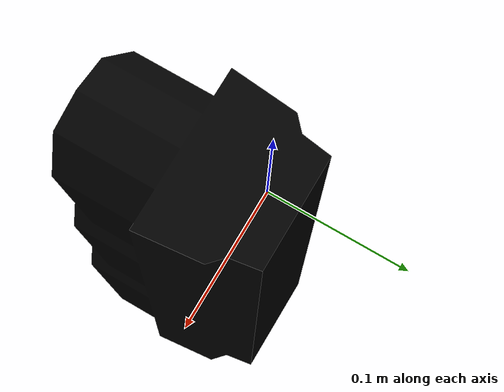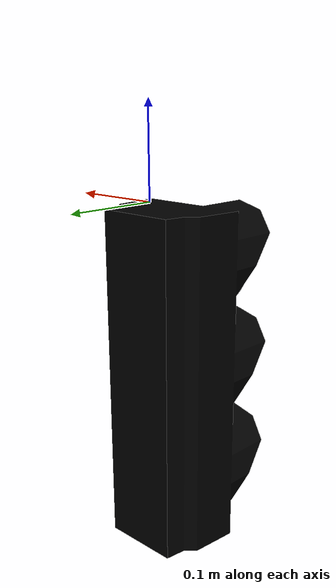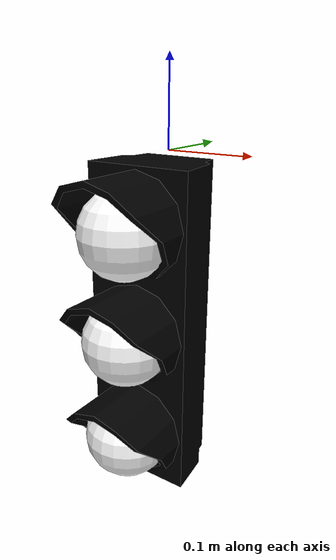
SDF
<?xml version='1.0'?>
<sdf version='1.6'>
  <model name='stop_light_small'>
    <link name='link'>
      <self_collide>0</self_collide>
      <enable_wind>0</enable_wind>
      <kinematic>0</kinematic>
      <pose frame=''>0 0 0 0 -0 0</pose>
      <gravity>1</gravity>
      <inertial>
        <mass>1</mass>
        <pose frame=''>0 0 0 0 -0 0</pose>
        <inertia>
          <ixx>1</ixx>
          <ixy>0</ixy>
          <ixz>0</ixz>
          <iyy>1</iyy>
          <iyz>0</iyz>
          <izz>1</izz>
        </inertia>
      </inertial>
      <visual name='red'>
        <pose frame=''>-0.001123 -0.082251 -0.077514 0 -0 0</pose>
        <geometry>
          <sphere>
            <radius>0.0506</radius>
          </sphere>
        </geometry>
        <material>
          <script>
            <uri>model://stop_light/materials/scripts/</uri>
            <uri>model://stop_light/materials/textures/</uri>
            <name>StopLight/Light</name>
          </script>
          <ambient>1 0 0 1</ambient>
          <specular>1 0 0 1</specular>
          <shader type='vertex'>
            <normal_map>__default__</normal_map>
          </shader>
          <diffuse>1 1 1 1</diffuse>
          <emissive>0 0 0 1</emissive>
        </material>
        <transparency>0</transparency>
        <cast_shadows>1</cast_shadows>
      </visual>
      <visual name='yellow'>
        <pose frame=''>-0.001123 -0.082251 -0.202 0 -0 0</pose>
        <geometry>
          <sphere>
            <radius>0.0506</radius>
          </sphere>
        </geometry>
        <material>
          <script>
            <uri>model://stop_light/materials/scripts/</uri>
            <uri>model://stop_light/materials/textures/</uri>
            <name>StopLight/Light</name>
          </script>
          <ambient>1 1 0 1</ambient>
          <specular>1 1 0 1</specular>
          <shader type='vertex'>
            <normal_map>__default__</normal_map>
          </shader>
          <diffuse>1 1 1 1</diffuse>
          <emissive>0 0 0 1</emissive>
        </material>
        <transparency>0</transparency>
        <cast_shadows>1</cast_shadows>
      </visual>
      <visual name='green'>
        <pose frame=''>-0.001123 -0.082251 -0.325 0 -0 0</pose>
        <geometry>
          <sphere>
            <radius>0.0506</radius>
          </sphere>
        </geometry>
        <material>
          <script>
            <uri>model://stop_light/materials/scripts/</uri>
            <uri>model://stop_light/materials/textures/</uri>
            <name>StopLight/Light</name>
          </script>
          <ambient>0 1 0 1</ambient>
          <specular>0 1 0 1</specular>
          <shader type='vertex'>
            <normal_map>__default__</normal_map>
          </shader>
          <diffuse>1 1 1 1</diffuse>
          <emissive>0 0 0 1</emissive>
        </material>
        <transparency>0</transparency>
        <cast_shadows>1</cast_shadows>
      </visual>
      <visual name='frame'>
        <geometry>
          <mesh>
            <uri>model://stop_light/meshes/stop_light.obj</uri>
            <scale>0.005 0.005 0.005</scale>
          </mesh>
        </geometry>
        <pose frame=''>0 0 0 0 -0 0</pose>
        <transparency>0</transparency>
        <cast_shadows>1</cast_shadows>
        <material>
          <shader type='vertex'>
            <normal_map>__default__</normal_map>
          </shader>
          <script>
            <name>ModelPreview_3::link::frame_MATERIAL_</name>
            <uri>__default__</uri>
          </script>
          <ambient>0 0 0 1</ambient>
          <diffuse>0 0 0 1</diffuse>
          <specular>0 0 0 1</specular>
          <emissive>0 0 0 1</emissive>
        </material>
      </visual>
      <collision name='collision'>
        <laser_retro>0</laser_retro>
        <max_contacts>10</max_contacts>
        <pose frame=''>0 0 0 0 -0 0</pose>
        <geometry>
          <mesh>
            <uri>/home/victor/.gazebo/models/stop_light/meshes/stop_light.obj</uri>
            <scale>0.01 0.01 0.01</scale>
          </mesh>
        </geometry>
        <surface>
          <friction>
            <ode>
              <mu>1</mu>
              <mu2>1</mu2>
              <fdir1>0 0 0</fdir1>
              <slip1>0</slip1>
              <slip2>0</slip2>
            </ode>
            <torsional>
              <coefficient>1</coefficient>
              <patch_radius>0</patch_radius>
              <surface_radius>0</surface_radius>
              <use_patch_radius>1</use_patch_radius>
              <ode>
                <slip>0</slip>
              </ode>
            </torsional>
          </friction>
          <bounce>
            <restitution_coefficient>0</restitution_coefficient>
            <threshold>1e+06</threshold>
          </bounce>
          <contact>
            <collide_without_contact>0</collide_without_contact>
            <collide_without_contact_bitmask>1</collide_without_contact_bitmask>
            <collide_bitmask>1</collide_bitmask>
            <ode>
              <soft_cfm>0</soft_cfm>
              <soft_erp>0.2</soft_erp>
              <kp>1e+13</kp>
              <kd>1</kd>
              <max_vel>0.01</max_vel>
              <min_depth>0</min_depth>
            </ode>
            <bullet>
              <split_impulse>1</split_impulse>
              <split_impulse_penetration_threshold>-0.01</split_impulse_penetration_threshold>
              <soft_cfm>0</soft_cfm>
              <soft_erp>0.2</soft_erp>
              <kp>1e+13</kp>
              <kd>1</kd>
            </bullet>
          </contact>
        </surface>
      </collision>
    </link>
    <static>1</static>
    <allow_auto_disable>1</allow_auto_disable>
  </model>
</sdf>
